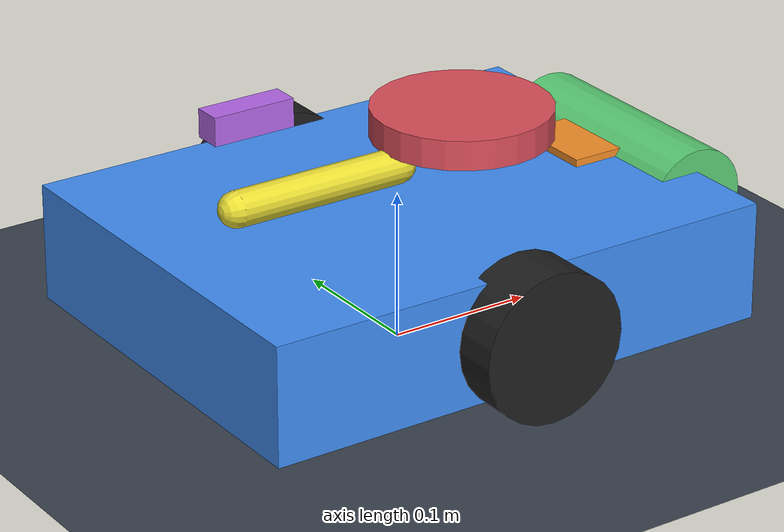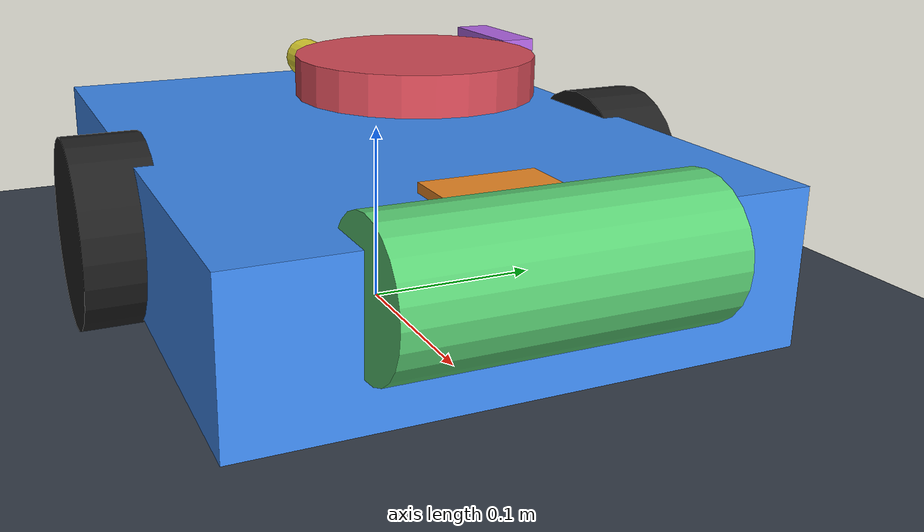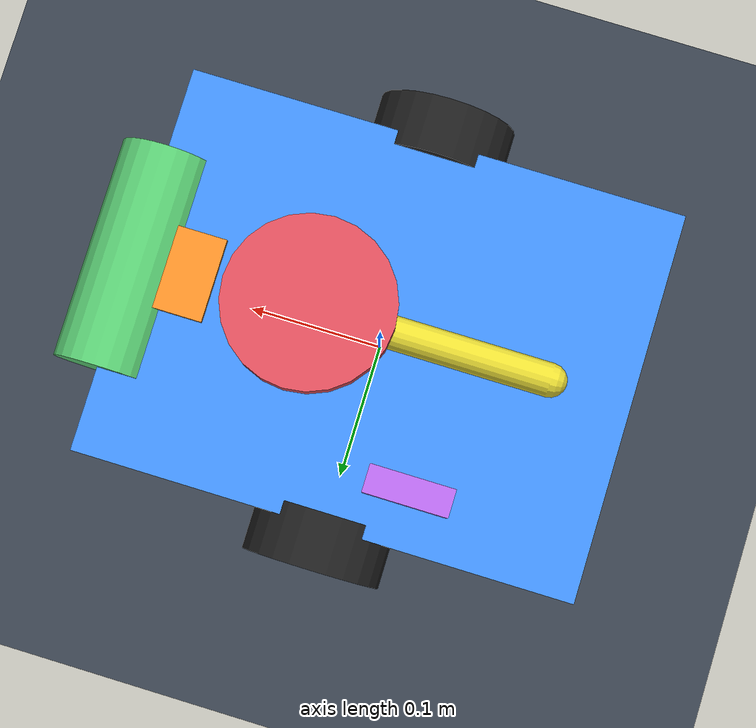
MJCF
<!--
  VEREEENVOUDIGD MuJoCo-model voor REVStarterBot2026.
  Dit is GEEN gevalideerde fysische replica van een echte FTC-robot.
  Alleen bedoeld voor browser-simulatie van Blocks-programma's.
-->
<mujoco model="REVStarterBot2026_simplified">
  <compiler angle="radian" coordinate="local" inertiafromgeom="true"/>
  <option timestep="0.002" gravity="0 0 -9.81" integrator="implicitfast"/>

  <visual>
    <headlight diffuse="0.7 0.7 0.7" ambient="0.25 0.25 0.25"/>
    <rgba haze="0.12 0.15 0.2 1"/>
  </visual>

  <asset>
    <texture type="skybox" builtin="gradient" rgb1="0.12 0.15 0.22" rgb2="0.02 0.03 0.05" width="256" height="256"/>
    <texture name="grid" type="2d" builtin="checker" rgb1="0.25 0.3 0.35" rgb2="0.18 0.2 0.24" width="512" height="512"/>
    <material name="grid" texture="grid" texrepeat="8 8" reflectance="0.1"/>
    <material name="chassis" rgba="0.25 0.55 0.95 1"/>
    <material name="wheel" rgba="0.12 0.12 0.12 1"/>
    <material name="accent" rgba="0.95 0.55 0.15 1"/>
    <material name="intake" rgba="0.35 0.8 0.45 1"/>
    <material name="flywheel" rgba="0.85 0.3 0.35 1"/>
  </asset>

  <worldbody>
    <light pos="1.5 -1.5 2.5" dir="-0.4 0.4 -1" diffuse="1 0.95 0.85"/>
    <geom name="floor" type="plane" size="3 3 0.05" material="grid" friction="1.2 0.05 0.001"/>

    <!-- Robot base (differential drive) -->
    <body name="chassis" pos="0 0 0.06">
      <freejoint name="root"/>
      <geom name="chassis_g" type="box" size="0.18 0.14 0.04" material="chassis" mass="4.0"
            friction="0.8 0.05 0.001"/>
      <!-- Visible “arrow” for heading -->
      <geom name="nose" type="box" size="0.04 0.03 0.015" pos="0.16 0 0.03" material="accent" mass="0.05"/>

      <!-- Left drive wheel (axis = Y) -->
      <body name="left_wheel" pos="0 0.15 0">
        <joint name="left_wheel_j" type="hinge" axis="0 1 0" damping="0.05" armature="0.01"/>
        <geom name="left_wheel_g" type="cylinder" size="0.05 0.02" euler="1.5708 0 0"
              material="wheel" mass="0.25" friction="1.8 0.05 0.002" condim="6"/>
      </body>

      <!-- Right drive wheel -->
      <body name="right_wheel" pos="0 -0.15 0">
        <joint name="right_wheel_j" type="hinge" axis="0 1 0" damping="0.05" armature="0.01"/>
        <geom name="right_wheel_g" type="cylinder" size="0.05 0.02" euler="1.5708 0 0"
              material="wheel" mass="0.25" friction="1.8 0.05 0.002" condim="6"/>
      </body>

      <!-- Flywheel (spinning disk on top) -->
      <body name="flywheel_body" pos="0.05 0 0.08">
        <joint name="flywheel_j" type="hinge" axis="0 0 1" damping="0.02" armature="0.005"/>
        <geom name="flywheel_g" type="cylinder" size="0.06 0.01" material="flywheel" mass="0.3"/>
      </body>

      <!-- Intake roller -->
      <body name="intake_body" pos="0.18 0 0.02">
        <joint name="intake_j" type="hinge" axis="0 1 0" damping="0.02" armature="0.005"/>
        <geom name="intake_g" type="cylinder" size="0.035 0.08" euler="1.5708 0 0"
              material="intake" mass="0.2"/>
      </body>

      <!-- Positional pollen servo (arm) -->
      <body name="pollen_base" pos="-0.12 0 0.06">
        <joint name="pollen_servo_j" type="hinge" axis="0 1 0" range="-1.57 1.57"
               damping="0.5" armature="0.002" limited="true"/>
        <geom name="pollen_arm" type="capsule" fromto="0 0 0  0.12 0 0" size="0.012"
              rgba="0.9 0.85 0.2 1" mass="0.08"/>
      </body>

      <!-- CRServo continuous spinner -->
      <body name="cr_servo_body" pos="-0.05 0.1 0.07">
        <joint name="cr_servo_j" type="hinge" axis="0 0 1" damping="0.05" armature="0.002"/>
        <geom name="cr_servo_g" type="box" size="0.03 0.01 0.01" rgba="0.7 0.4 0.9 1" mass="0.05"/>
      </body>
    </body>
  </worldbody>

  <actuator>
    <!-- Velocity actuators: ctrl = desired joint angular velocity (rad/s) -->
    <velocity name="left_drive" joint="left_wheel_j" kv="8" ctrllimited="true" ctrlrange="-31.4 31.4"/>
    <velocity name="right_drive" joint="right_wheel_j" kv="8" ctrllimited="true" ctrlrange="-31.4 31.4"/>
    <velocity name="flywheel_act" joint="flywheel_j" kv="4" ctrllimited="true" ctrlrange="-628 628"/>
    <velocity name="intake_act" joint="intake_j" kv="4" ctrllimited="true" ctrlrange="-31.4 31.4"/>
    <!-- Position actuator for pollen servo: ctrl = joint angle (rad) -->
    <position name="pollen_servo_act" joint="pollen_servo_j" kp="40" ctrllimited="true" ctrlrange="-1.57 1.57"/>
    <!-- CRServo as velocity device -->
    <velocity name="cr_servo_act" joint="cr_servo_j" kv="3" ctrllimited="true" ctrlrange="-6.28 6.28"/>
  </actuator>
</mujoco>
